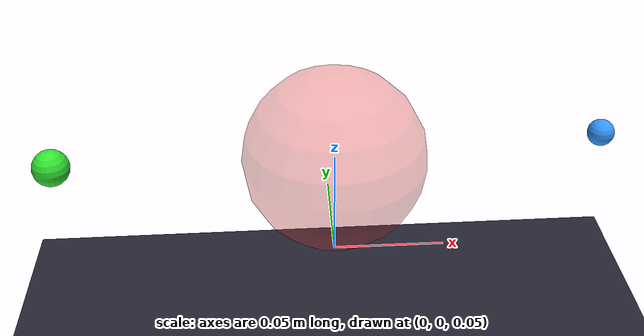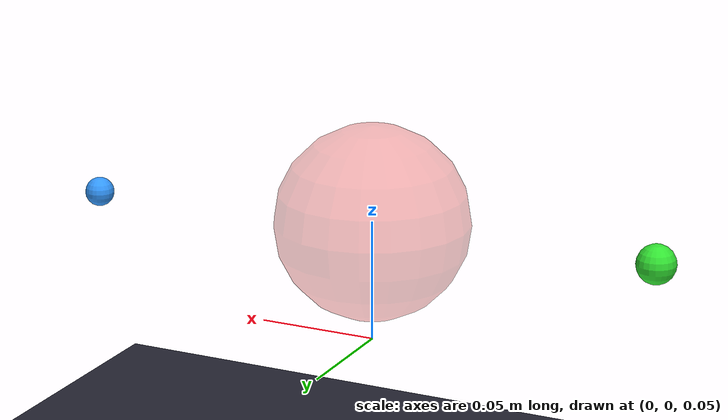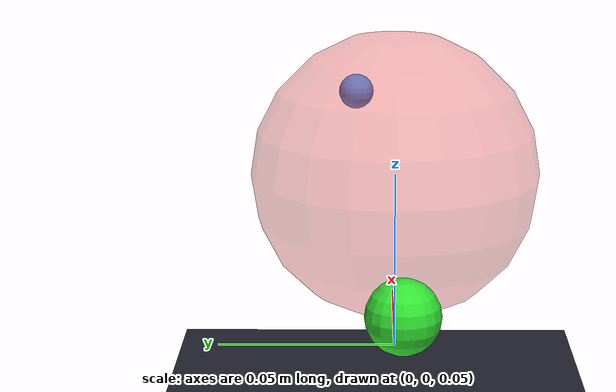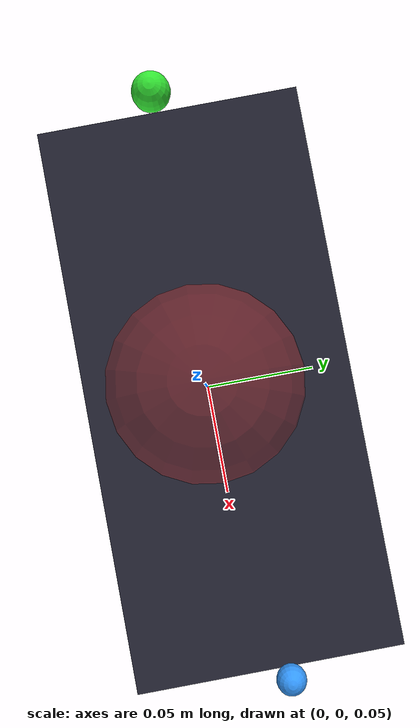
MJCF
<mujoco model="activeguide_phase0">
  <!-- Surgical workspace is ~0.2 m across. No gravity: the tool is kinematic
       (a mocap body) and the virtual fixture is what governs its motion. -->
  <option timestep="0.002" gravity="0 0 0"/>

  <visual>
    <global offwidth="1280" offheight="720"/>
    <quality shadowsize="2048"/>
    <headlight diffuse="0.6 0.6 0.6" ambient="0.3 0.3 0.3"/>
  </visual>

  <asset>
    <texture name="grid" type="2d" builtin="checker" rgb1="0.1 0.1 0.15"
             rgb2="0.18 0.18 0.24" width="300" height="300"/>
    <material name="grid" texture="grid" texrepeat="6 6" reflectance="0.2"/>
  </asset>

  <worldbody>
    <light pos="0 0 0.6" dir="0 0 -1" diffuse="0.8 0.8 0.8"/>
    <geom name="floor" type="plane" size="0.5 0.5 0.01" material="grid" pos="0 0 0"/>

    <!-- Forbidden region: protected anatomy. The demo reads its pos/size so
         the SDF and the rendered surface are guaranteed to match. -->
    <geom name="forbidden" type="sphere" size="0.04" pos="0 0 0.10"
          rgba="0.9 0.2 0.2 0.35" contype="0" conaffinity="0"/>

    <!-- Goal on the far side of the forbidden sphere: a straight line from the
         tool start to the goal passes through it. -->
    <site name="goal" type="sphere" size="0.008" pos="-0.12 0 0.10"
          rgba="0.2 0.9 0.2 1"/>

    <!-- Tool tip: what the robot actually does (constrained by the fixture). -->
    <body name="tool" mocap="true" pos="0.12 0.012 0.10">
      <geom name="tool_tip" type="sphere" size="0.006" rgba="0.2 0.6 1.0 1"
            contype="0" conaffinity="0"/>
    </body>

    <!-- Ghost: the raw, unconstrained command (drives straight through). -->
    <body name="ghost" mocap="true" pos="0.12 0.012 0.10">
      <geom name="ghost_tip" type="sphere" size="0.006" rgba="1.0 0.8 0.2 0.4"
            contype="0" conaffinity="0"/>
    </body>
  </worldbody>
</mujoco>
